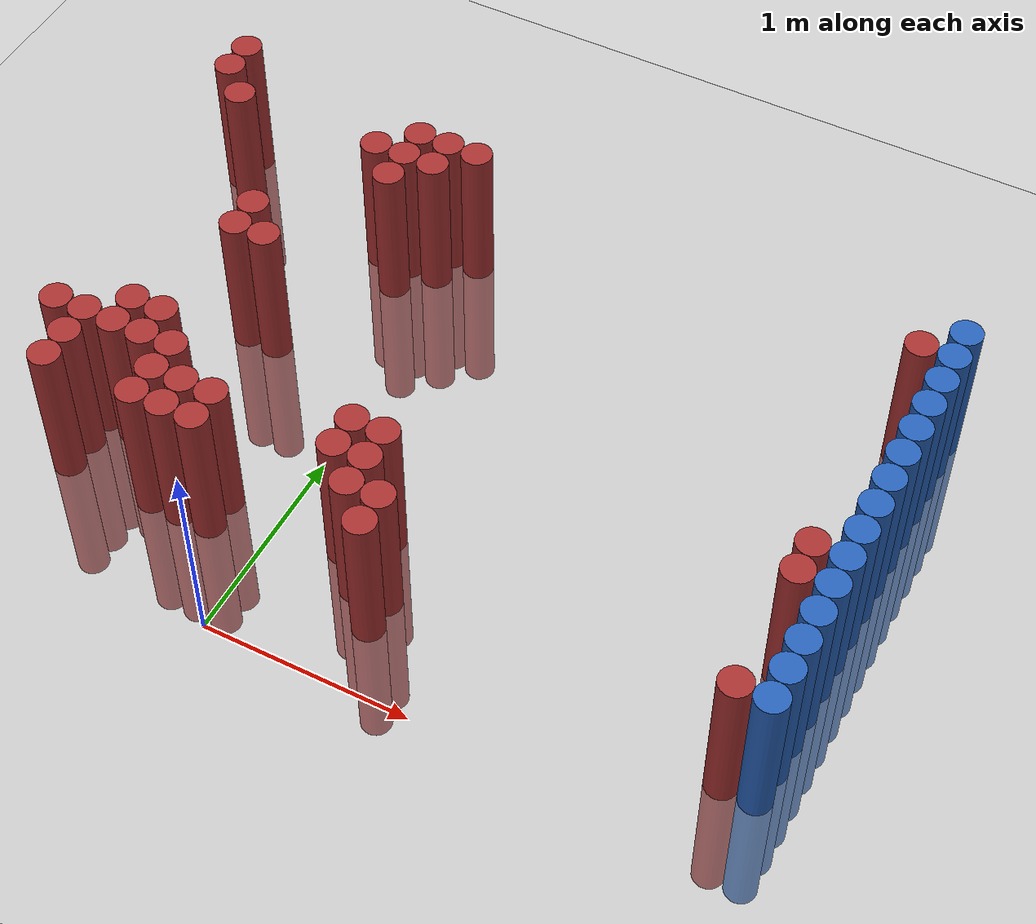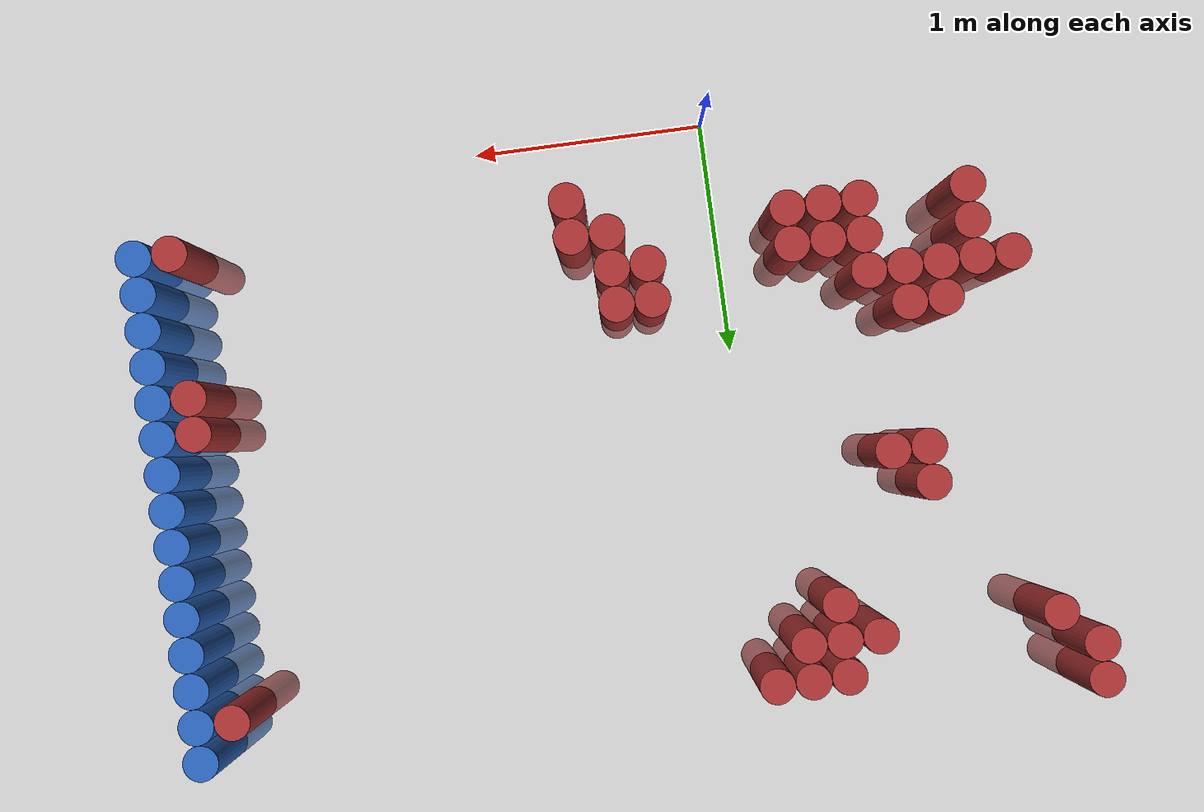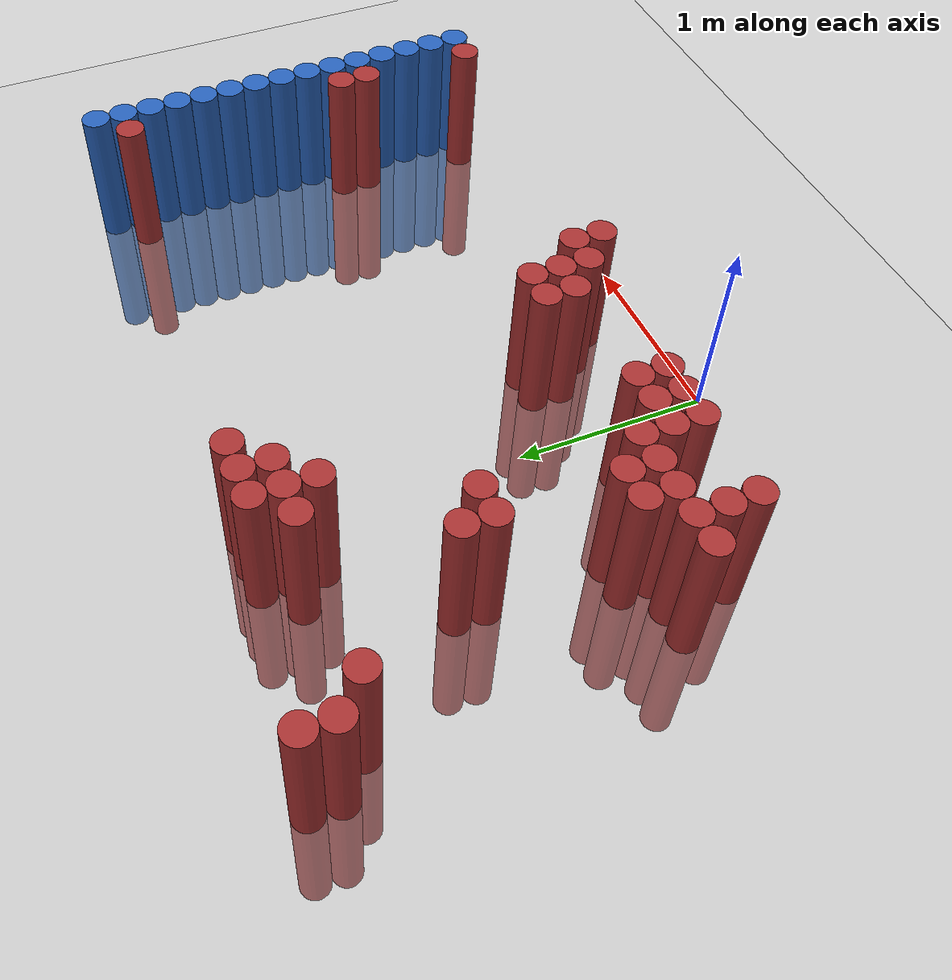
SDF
<sdf version="1.6">
 <world name="default">
  <model name="ground_plane">
   <static>1</static>
   <link name="link">
    <collision name="collision">
     <geometry><plane><normal>0 0 1</normal><size>100 100</size></plane></geometry>
     <surface><friction><ode><mu>100</mu><mu2>50</mu2></ode></friction></surface>
    </collision>
    <visual name="visual">
     <cast_shadows>0</cast_shadows>
     <geometry><plane><normal>0 0 1</normal><size>100 100</size></plane></geometry>
     <material>
      <script><uri>file://media/materials/scripts/gazebo.material</uri><name>Gazebo/Grey</name></script>
     </material>
    </visual>
   </link>
  </model>
  <model name="unit_cylinder_156">
   <static>1</static>
   <pose>-1.325000 2.425000 0.000000 0.000000 0.000000 0.000000</pose>
   <link name="link">
    <inertial>
     <mass>1</mass>
     <inertia><ixx>0.145833</ixx><ixy>0</ixy><ixz>0</ixz><iyy>0.145833</iyy><iyz>0</iyz><izz>0.125</izz></inertia>
    </inertial>
    <collision name="collision">
     <geometry><cylinder><radius>0.075000</radius><length>1.5</length></cylinder></geometry>
    </collision>
    <visual name="visual">
     <geometry><cylinder><radius>0.075000</radius><length>1.5</length></cylinder></geometry>
     <material>
      <ambient>0.648000 0.192000 0.192000 1</ambient>
      <diffuse>0.648000 0.192000 0.192000 1</diffuse>
     </material>
     <material>
      <script><name>Gazebo/Grey</name><uri>file://media/materials/scripts/gazebo.material</uri></script>
     </material>
    </visual>
   </link>
  </model>
  <model name="unit_cylinder_157">
   <static>1</static>
   <pose>-1.325000 2.575000 0.000000 0.000000 0.000000 0.000000</pose>
   <link name="link">
    <inertial>
     <mass>1</mass>
     <inertia><ixx>0.145833</ixx><ixy>0</ixy><ixz>0</ixz><iyy>0.145833</iyy><iyz>0</iyz><izz>0.125</izz></inertia>
    </inertial>
    <collision name="collision">
     <geometry><cylinder><radius>0.075000</radius><length>1.5</length></cylinder></geometry>
    </collision>
    <visual name="visual">
     <geometry><cylinder><radius>0.075000</radius><length>1.5</length></cylinder></geometry>
     <material>
      <ambient>0.648000 0.192000 0.192000 1</ambient>
      <diffuse>0.648000 0.192000 0.192000 1</diffuse>
     </material>
     <material>
      <script><name>Gazebo/Grey</name><uri>file://media/materials/scripts/gazebo.material</uri></script>
     </material>
    </visual>
   </link>
  </model>
  <model name="unit_cylinder_166">
   <static>1</static>
   <pose>-1.175000 0.775000 0.000000 0.000000 0.000000 0.000000</pose>
   <link name="link">
    <inertial>
     <mass>1</mass>
     <inertia><ixx>0.145833</ixx><ixy>0</ixy><ixz>0</ixz><iyy>0.145833</iyy><iyz>0</iyz><izz>0.125</izz></inertia>
    </inertial>
    <collision name="collision">
     <geometry><cylinder><radius>0.075000</radius><length>1.5</length></cylinder></geometry>
    </collision>
    <visual name="visual">
     <geometry><cylinder><radius>0.075000</radius><length>1.5</length></cylinder></geometry>
     <material>
      <ambient>0.648000 0.192000 0.192000 1</ambient>
      <diffuse>0.648000 0.192000 0.192000 1</diffuse>
     </material>
     <material>
      <script><name>Gazebo/Grey</name><uri>file://media/materials/scripts/gazebo.material</uri></script>
     </material>
    </visual>
   </link>
  </model>
  <model name="unit_cylinder_167">
   <static>1</static>
   <pose>-1.175000 2.275000 0.000000 0.000000 0.000000 0.000000</pose>
   <link name="link">
    <inertial>
     <mass>1</mass>
     <inertia><ixx>0.145833</ixx><ixy>0</ixy><ixz>0</ixz><iyy>0.145833</iyy><iyz>0</iyz><izz>0.125</izz></inertia>
    </inertial>
    <collision name="collision">
     <geometry><cylinder><radius>0.075000</radius><length>1.5</length></cylinder></geometry>
    </collision>
    <visual name="visual">
     <geometry><cylinder><radius>0.075000</radius><length>1.5</length></cylinder></geometry>
     <material>
      <ambient>0.648000 0.192000 0.192000 1</ambient>
      <diffuse>0.648000 0.192000 0.192000 1</diffuse>
     </material>
     <material>
      <script><name>Gazebo/Grey</name><uri>file://media/materials/scripts/gazebo.material</uri></script>
     </material>
    </visual>
   </link>
  </model>
  <model name="unit_cylinder_173">
   <static>1</static>
   <pose>-1.025000 0.475000 0.000000 0.000000 0.000000 0.000000</pose>
   <link name="link">
    <inertial>
     <mass>1</mass>
     <inertia><ixx>0.145833</ixx><ixy>0</ixy><ixz>0</ixz><iyy>0.145833</iyy><iyz>0</iyz><izz>0.125</izz></inertia>
    </inertial>
    <collision name="collision">
     <geometry><cylinder><radius>0.075000</radius><length>1.5</length></cylinder></geometry>
    </collision>
    <visual name="visual">
     <geometry><cylinder><radius>0.075000</radius><length>1.5</length></cylinder></geometry>
     <material>
      <ambient>0.648000 0.192000 0.192000 1</ambient>
      <diffuse>0.648000 0.192000 0.192000 1</diffuse>
     </material>
     <material>
      <script><name>Gazebo/Grey</name><uri>file://media/materials/scripts/gazebo.material</uri></script>
     </material>
    </visual>
   </link>
  </model>
  <model name="unit_cylinder_174">
   <static>1</static>
   <pose>-1.025000 0.625000 0.000000 0.000000 0.000000 0.000000</pose>
   <link name="link">
    <inertial>
     <mass>1</mass>
     <inertia><ixx>0.145833</ixx><ixy>0</ixy><ixz>0</ixz><iyy>0.145833</iyy><iyz>0</iyz><izz>0.125</izz></inertia>
    </inertial>
    <collision name="collision">
     <geometry><cylinder><radius>0.075000</radius><length>1.5</length></cylinder></geometry>
    </collision>
    <visual name="visual">
     <geometry><cylinder><radius>0.075000</radius><length>1.5</length></cylinder></geometry>
     <material>
      <ambient>0.648000 0.192000 0.192000 1</ambient>
      <diffuse>0.648000 0.192000 0.192000 1</diffuse>
     </material>
     <material>
      <script><name>Gazebo/Grey</name><uri>file://media/materials/scripts/gazebo.material</uri></script>
     </material>
    </visual>
   </link>
  </model>
  <model name="unit_cylinder_175">
   <static>1</static>
   <pose>-1.025000 0.775000 0.000000 0.000000 0.000000 0.000000</pose>
   <link name="link">
    <inertial>
     <mass>1</mass>
     <inertia><ixx>0.145833</ixx><ixy>0</ixy><ixz>0</ixz><iyy>0.145833</iyy><iyz>0</iyz><izz>0.125</izz></inertia>
    </inertial>
    <collision name="collision">
     <geometry><cylinder><radius>0.075000</radius><length>1.5</length></cylinder></geometry>
    </collision>
    <visual name="visual">
     <geometry><cylinder><radius>0.075000</radius><length>1.5</length></cylinder></geometry>
     <material>
      <ambient>0.648000 0.192000 0.192000 1</ambient>
      <diffuse>0.648000 0.192000 0.192000 1</diffuse>
     </material>
     <material>
      <script><name>Gazebo/Grey</name><uri>file://media/materials/scripts/gazebo.material</uri></script>
     </material>
    </visual>
   </link>
  </model>
  <model name="unit_cylinder_177">
   <static>1</static>
   <pose>-0.875000 0.775000 0.000000 0.000000 0.000000 0.000000</pose>
   <link name="link">
    <inertial>
     <mass>1</mass>
     <inertia><ixx>0.145833</ixx><ixy>0</ixy><ixz>0</ixz><iyy>0.145833</iyy><iyz>0</iyz><izz>0.125</izz></inertia>
    </inertial>
    <collision name="collision">
     <geometry><cylinder><radius>0.075000</radius><length>1.5</length></cylinder></geometry>
    </collision>
    <visual name="visual">
     <geometry><cylinder><radius>0.075000</radius><length>1.5</length></cylinder></geometry>
     <material>
      <ambient>0.648000 0.192000 0.192000 1</ambient>
      <diffuse>0.648000 0.192000 0.192000 1</diffuse>
     </material>
     <material>
      <script><name>Gazebo/Grey</name><uri>file://media/materials/scripts/gazebo.material</uri></script>
     </material>
    </visual>
   </link>
  </model>
  <model name="unit_cylinder_178">
   <static>1</static>
   <pose>-0.875000 0.925000 0.000000 0.000000 0.000000 0.000000</pose>
   <link name="link">
    <inertial>
     <mass>1</mass>
     <inertia><ixx>0.145833</ixx><ixy>0</ixy><ixz>0</ixz><iyy>0.145833</iyy><iyz>0</iyz><izz>0.125</izz></inertia>
    </inertial>
    <collision name="collision">
     <geometry><cylinder><radius>0.075000</radius><length>1.5</length></cylinder></geometry>
    </collision>
    <visual name="visual">
     <geometry><cylinder><radius>0.075000</radius><length>1.5</length></cylinder></geometry>
     <material>
      <ambient>0.648000 0.192000 0.192000 1</ambient>
      <diffuse>0.648000 0.192000 0.192000 1</diffuse>
     </material>
     <material>
      <script><name>Gazebo/Grey</name><uri>file://media/materials/scripts/gazebo.material</uri></script>
     </material>
    </visual>
   </link>
  </model>
  <model name="unit_cylinder_181">
   <static>1</static>
   <pose>-0.725000 0.775000 0.000000 0.000000 0.000000 0.000000</pose>
   <link name="link">
    <inertial>
     <mass>1</mass>
     <inertia><ixx>0.145833</ixx><ixy>0</ixy><ixz>0</ixz><iyy>0.145833</iyy><iyz>0</iyz><izz>0.125</izz></inertia>
    </inertial>
    <collision name="collision">
     <geometry><cylinder><radius>0.075000</radius><length>1.5</length></cylinder></geometry>
    </collision>
    <visual name="visual">
     <geometry><cylinder><radius>0.075000</radius><length>1.5</length></cylinder></geometry>
     <material>
      <ambient>0.648000 0.192000 0.192000 1</ambient>
      <diffuse>0.648000 0.192000 0.192000 1</diffuse>
     </material>
     <material>
      <script><name>Gazebo/Grey</name><uri>file://media/materials/scripts/gazebo.material</uri></script>
     </material>
    </visual>
   </link>
  </model>
  <model name="unit_cylinder_182">
   <static>1</static>
   <pose>-0.725000 0.925000 0.000000 0.000000 0.000000 0.000000</pose>
   <link name="link">
    <inertial>
     <mass>1</mass>
     <inertia><ixx>0.145833</ixx><ixy>0</ixy><ixz>0</ixz><iyy>0.145833</iyy><iyz>0</iyz><izz>0.125</izz></inertia>
    </inertial>
    <collision name="collision">
     <geometry><cylinder><radius>0.075000</radius><length>1.5</length></cylinder></geometry>
    </collision>
    <visual name="visual">
     <geometry><cylinder><radius>0.075000</radius><length>1.5</length></cylinder></geometry>
     <material>
      <ambient>0.648000 0.192000 0.192000 1</ambient>
      <diffuse>0.648000 0.192000 0.192000 1</diffuse>
     </material>
     <material>
      <script><name>Gazebo/Grey</name><uri>file://media/materials/scripts/gazebo.material</uri></script>
     </material>
    </visual>
   </link>
  </model>
  <model name="unit_cylinder_183">
   <static>1</static>
   <pose>-0.725000 1.525000 0.000000 0.000000 0.000000 0.000000</pose>
   <link name="link">
    <inertial>
     <mass>1</mass>
     <inertia><ixx>0.145833</ixx><ixy>0</ixy><ixz>0</ixz><iyy>0.145833</iyy><iyz>0</iyz><izz>0.125</izz></inertia>
    </inertial>
    <collision name="collision">
     <geometry><cylinder><radius>0.075000</radius><length>1.5</length></cylinder></geometry>
    </collision>
    <visual name="visual">
     <geometry><cylinder><radius>0.075000</radius><length>1.5</length></cylinder></geometry>
     <material>
      <ambient>0.648000 0.192000 0.192000 1</ambient>
      <diffuse>0.648000 0.192000 0.192000 1</diffuse>
     </material>
     <material>
      <script><name>Gazebo/Grey</name><uri>file://media/materials/scripts/gazebo.material</uri></script>
     </material>
    </visual>
   </link>
  </model>
  <model name="unit_cylinder_184">
   <static>1</static>
   <pose>-0.725000 1.675000 0.000000 0.000000 0.000000 0.000000</pose>
   <link name="link">
    <inertial>
     <mass>1</mass>
     <inertia><ixx>0.145833</ixx><ixy>0</ixy><ixz>0</ixz><iyy>0.145833</iyy><iyz>0</iyz><izz>0.125</izz></inertia>
    </inertial>
    <collision name="collision">
     <geometry><cylinder><radius>0.075000</radius><length>1.5</length></cylinder></geometry>
    </collision>
    <visual name="visual">
     <geometry><cylinder><radius>0.075000</radius><length>1.5</length></cylinder></geometry>
     <material>
      <ambient>0.648000 0.192000 0.192000 1</ambient>
      <diffuse>0.648000 0.192000 0.192000 1</diffuse>
     </material>
     <material>
      <script><name>Gazebo/Grey</name><uri>file://media/materials/scripts/gazebo.material</uri></script>
     </material>
    </visual>
   </link>
  </model>
  <model name="unit_cylinder_186">
   <static>1</static>
   <pose>-0.575000 0.475000 0.000000 0.000000 0.000000 0.000000</pose>
   <link name="link">
    <inertial>
     <mass>1</mass>
     <inertia><ixx>0.145833</ixx><ixy>0</ixy><ixz>0</ixz><iyy>0.145833</iyy><iyz>0</iyz><izz>0.125</izz></inertia>
    </inertial>
    <collision name="collision">
     <geometry><cylinder><radius>0.075000</radius><length>1.5</length></cylinder></geometry>
    </collision>
    <visual name="visual">
     <geometry><cylinder><radius>0.075000</radius><length>1.5</length></cylinder></geometry>
     <material>
      <ambient>0.648000 0.192000 0.192000 1</ambient>
      <diffuse>0.648000 0.192000 0.192000 1</diffuse>
     </material>
     <material>
      <script><name>Gazebo/Grey</name><uri>file://media/materials/scripts/gazebo.material</uri></script>
     </material>
    </visual>
   </link>
  </model>
  <model name="unit_cylinder_187">
   <static>1</static>
   <pose>-0.575000 0.625000 0.000000 0.000000 0.000000 0.000000</pose>
   <link name="link">
    <inertial>
     <mass>1</mass>
     <inertia><ixx>0.145833</ixx><ixy>0</ixy><ixz>0</ixz><iyy>0.145833</iyy><iyz>0</iyz><izz>0.125</izz></inertia>
    </inertial>
    <collision name="collision">
     <geometry><cylinder><radius>0.075000</radius><length>1.5</length></cylinder></geometry>
    </collision>
    <visual name="visual">
     <geometry><cylinder><radius>0.075000</radius><length>1.5</length></cylinder></geometry>
     <material>
      <ambient>0.648000 0.192000 0.192000 1</ambient>
      <diffuse>0.648000 0.192000 0.192000 1</diffuse>
     </material>
     <material>
      <script><name>Gazebo/Grey</name><uri>file://media/materials/scripts/gazebo.material</uri></script>
     </material>
    </visual>
   </link>
  </model>
  <model name="unit_cylinder_188">
   <static>1</static>
   <pose>-0.575000 0.775000 0.000000 0.000000 0.000000 0.000000</pose>
   <link name="link">
    <inertial>
     <mass>1</mass>
     <inertia><ixx>0.145833</ixx><ixy>0</ixy><ixz>0</ixz><iyy>0.145833</iyy><iyz>0</iyz><izz>0.125</izz></inertia>
    </inertial>
    <collision name="collision">
     <geometry><cylinder><radius>0.075000</radius><length>1.5</length></cylinder></geometry>
    </collision>
    <visual name="visual">
     <geometry><cylinder><radius>0.075000</radius><length>1.5</length></cylinder></geometry>
     <material>
      <ambient>0.648000 0.192000 0.192000 1</ambient>
      <diffuse>0.648000 0.192000 0.192000 1</diffuse>
     </material>
     <material>
      <script><name>Gazebo/Grey</name><uri>file://media/materials/scripts/gazebo.material</uri></script>
     </material>
    </visual>
   </link>
  </model>
  <model name="unit_cylinder_189">
   <static>1</static>
   <pose>-0.575000 1.525000 0.000000 0.000000 0.000000 0.000000</pose>
   <link name="link">
    <inertial>
     <mass>1</mass>
     <inertia><ixx>0.145833</ixx><ixy>0</ixy><ixz>0</ixz><iyy>0.145833</iyy><iyz>0</iyz><izz>0.125</izz></inertia>
    </inertial>
    <collision name="collision">
     <geometry><cylinder><radius>0.075000</radius><length>1.5</length></cylinder></geometry>
    </collision>
    <visual name="visual">
     <geometry><cylinder><radius>0.075000</radius><length>1.5</length></cylinder></geometry>
     <material>
      <ambient>0.648000 0.192000 0.192000 1</ambient>
      <diffuse>0.648000 0.192000 0.192000 1</diffuse>
     </material>
     <material>
      <script><name>Gazebo/Grey</name><uri>file://media/materials/scripts/gazebo.material</uri></script>
     </material>
    </visual>
   </link>
  </model>
  <model name="unit_cylinder_190">
   <static>1</static>
   <pose>-0.425000 0.475000 0.000000 0.000000 0.000000 0.000000</pose>
   <link name="link">
    <inertial>
     <mass>1</mass>
     <inertia><ixx>0.145833</ixx><ixy>0</ixy><ixz>0</ixz><iyy>0.145833</iyy><iyz>0</iyz><izz>0.125</izz></inertia>
    </inertial>
    <collision name="collision">
     <geometry><cylinder><radius>0.075000</radius><length>1.5</length></cylinder></geometry>
    </collision>
    <visual name="visual">
     <geometry><cylinder><radius>0.075000</radius><length>1.5</length></cylinder></geometry>
     <material>
      <ambient>0.648000 0.192000 0.192000 1</ambient>
      <diffuse>0.648000 0.192000 0.192000 1</diffuse>
     </material>
     <material>
      <script><name>Gazebo/Grey</name><uri>file://media/materials/scripts/gazebo.material</uri></script>
     </material>
    </visual>
   </link>
  </model>
  <model name="unit_cylinder_191">
   <static>1</static>
   <pose>-0.425000 0.625000 0.000000 0.000000 0.000000 0.000000</pose>
   <link name="link">
    <inertial>
     <mass>1</mass>
     <inertia><ixx>0.145833</ixx><ixy>0</ixy><ixz>0</ixz><iyy>0.145833</iyy><iyz>0</iyz><izz>0.125</izz></inertia>
    </inertial>
    <collision name="collision">
     <geometry><cylinder><radius>0.075000</radius><length>1.5</length></cylinder></geometry>
    </collision>
    <visual name="visual">
     <geometry><cylinder><radius>0.075000</radius><length>1.5</length></cylinder></geometry>
     <material>
      <ambient>0.648000 0.192000 0.192000 1</ambient>
      <diffuse>0.648000 0.192000 0.192000 1</diffuse>
     </material>
     <material>
      <script><name>Gazebo/Grey</name><uri>file://media/materials/scripts/gazebo.material</uri></script>
     </material>
    </visual>
   </link>
  </model>
  <model name="unit_cylinder_192">
   <static>1</static>
   <pose>-0.425000 2.275000 0.000000 0.000000 0.000000 0.000000</pose>
   <link name="link">
    <inertial>
     <mass>1</mass>
     <inertia><ixx>0.145833</ixx><ixy>0</ixy><ixz>0</ixz><iyy>0.145833</iyy><iyz>0</iyz><izz>0.125</izz></inertia>
    </inertial>
    <collision name="collision">
     <geometry><cylinder><radius>0.075000</radius><length>1.5</length></cylinder></geometry>
    </collision>
    <visual name="visual">
     <geometry><cylinder><radius>0.075000</radius><length>1.5</length></cylinder></geometry>
     <material>
      <ambient>0.648000 0.192000 0.192000 1</ambient>
      <diffuse>0.648000 0.192000 0.192000 1</diffuse>
     </material>
     <material>
      <script><name>Gazebo/Grey</name><uri>file://media/materials/scripts/gazebo.material</uri></script>
     </material>
    </visual>
   </link>
  </model>
  <model name="unit_cylinder_193">
   <static>1</static>
   <pose>-0.275000 0.475000 0.000000 0.000000 0.000000 0.000000</pose>
   <link name="link">
    <inertial>
     <mass>1</mass>
     <inertia><ixx>0.145833</ixx><ixy>0</ixy><ixz>0</ixz><iyy>0.145833</iyy><iyz>0</iyz><izz>0.125</izz></inertia>
    </inertial>
    <collision name="collision">
     <geometry><cylinder><radius>0.075000</radius><length>1.5</length></cylinder></geometry>
    </collision>
    <visual name="visual">
     <geometry><cylinder><radius>0.075000</radius><length>1.5</length></cylinder></geometry>
     <material>
      <ambient>0.648000 0.192000 0.192000 1</ambient>
      <diffuse>0.648000 0.192000 0.192000 1</diffuse>
     </material>
     <material>
      <script><name>Gazebo/Grey</name><uri>file://media/materials/scripts/gazebo.material</uri></script>
     </material>
    </visual>
   </link>
  </model>
  <model name="unit_cylinder_194">
   <static>1</static>
   <pose>-0.275000 0.625000 0.000000 0.000000 0.000000 0.000000</pose>
   <link name="link">
    <inertial>
     <mass>1</mass>
     <inertia><ixx>0.145833</ixx><ixy>0</ixy><ixz>0</ixz><iyy>0.145833</iyy><iyz>0</iyz><izz>0.125</izz></inertia>
    </inertial>
    <collision name="collision">
     <geometry><cylinder><radius>0.075000</radius><length>1.5</length></cylinder></geometry>
    </collision>
    <visual name="visual">
     <geometry><cylinder><radius>0.075000</radius><length>1.5</length></cylinder></geometry>
     <material>
      <ambient>0.648000 0.192000 0.192000 1</ambient>
      <diffuse>0.648000 0.192000 0.192000 1</diffuse>
     </material>
     <material>
      <script><name>Gazebo/Grey</name><uri>file://media/materials/scripts/gazebo.material</uri></script>
     </material>
    </visual>
   </link>
  </model>
  <model name="unit_cylinder_195">
   <static>1</static>
   <pose>-0.275000 2.125000 0.000000 0.000000 0.000000 0.000000</pose>
   <link name="link">
    <inertial>
     <mass>1</mass>
     <inertia><ixx>0.145833</ixx><ixy>0</ixy><ixz>0</ixz><iyy>0.145833</iyy><iyz>0</iyz><izz>0.125</izz></inertia>
    </inertial>
    <collision name="collision">
     <geometry><cylinder><radius>0.075000</radius><length>1.5</length></cylinder></geometry>
    </collision>
    <visual name="visual">
     <geometry><cylinder><radius>0.075000</radius><length>1.5</length></cylinder></geometry>
     <material>
      <ambient>0.648000 0.192000 0.192000 1</ambient>
      <diffuse>0.648000 0.192000 0.192000 1</diffuse>
     </material>
     <material>
      <script><name>Gazebo/Grey</name><uri>file://media/materials/scripts/gazebo.material</uri></script>
     </material>
    </visual>
   </link>
  </model>
  <model name="unit_cylinder_196">
   <static>1</static>
   <pose>-0.275000 2.275000 0.000000 0.000000 0.000000 0.000000</pose>
   <link name="link">
    <inertial>
     <mass>1</mass>
     <inertia><ixx>0.145833</ixx><ixy>0</ixy><ixz>0</ixz><iyy>0.145833</iyy><iyz>0</iyz><izz>0.125</izz></inertia>
    </inertial>
    <collision name="collision">
     <geometry><cylinder><radius>0.075000</radius><length>1.5</length></cylinder></geometry>
    </collision>
    <visual name="visual">
     <geometry><cylinder><radius>0.075000</radius><length>1.5</length></cylinder></geometry>
     <material>
      <ambient>0.648000 0.192000 0.192000 1</ambient>
      <diffuse>0.648000 0.192000 0.192000 1</diffuse>
     </material>
     <material>
      <script><name>Gazebo/Grey</name><uri>file://media/materials/scripts/gazebo.material</uri></script>
     </material>
    </visual>
   </link>
  </model>
  <model name="unit_cylinder_197">
   <static>1</static>
   <pose>-0.275000 2.425000 0.000000 0.000000 0.000000 0.000000</pose>
   <link name="link">
    <inertial>
     <mass>1</mass>
     <inertia><ixx>0.145833</ixx><ixy>0</ixy><ixz>0</ixz><iyy>0.145833</iyy><iyz>0</iyz><izz>0.125</izz></inertia>
    </inertial>
    <collision name="collision">
     <geometry><cylinder><radius>0.075000</radius><length>1.5</length></cylinder></geometry>
    </collision>
    <visual name="visual">
     <geometry><cylinder><radius>0.075000</radius><length>1.5</length></cylinder></geometry>
     <material>
      <ambient>0.648000 0.192000 0.192000 1</ambient>
      <diffuse>0.648000 0.192000 0.192000 1</diffuse>
     </material>
     <material>
      <script><name>Gazebo/Grey</name><uri>file://media/materials/scripts/gazebo.material</uri></script>
     </material>
    </visual>
   </link>
  </model>
  <model name="unit_cylinder_198">
   <static>1</static>
   <pose>-0.125000 2.275000 0.000000 0.000000 0.000000 0.000000</pose>
   <link name="link">
    <inertial>
     <mass>1</mass>
     <inertia><ixx>0.145833</ixx><ixy>0</ixy><ixz>0</ixz><iyy>0.145833</iyy><iyz>0</iyz><izz>0.125</izz></inertia>
    </inertial>
    <collision name="collision">
     <geometry><cylinder><radius>0.075000</radius><length>1.5</length></cylinder></geometry>
    </collision>
    <visual name="visual">
     <geometry><cylinder><radius>0.075000</radius><length>1.5</length></cylinder></geometry>
     <material>
      <ambient>0.648000 0.192000 0.192000 1</ambient>
      <diffuse>0.648000 0.192000 0.192000 1</diffuse>
     </material>
     <material>
      <script><name>Gazebo/Grey</name><uri>file://media/materials/scripts/gazebo.material</uri></script>
     </material>
    </visual>
   </link>
  </model>
  <model name="unit_cylinder_199">
   <static>1</static>
   <pose>-0.125000 2.425000 0.000000 0.000000 0.000000 0.000000</pose>
   <link name="link">
    <inertial>
     <mass>1</mass>
     <inertia><ixx>0.145833</ixx><ixy>0</ixy><ixz>0</ixz><iyy>0.145833</iyy><iyz>0</iyz><izz>0.125</izz></inertia>
    </inertial>
    <collision name="collision">
     <geometry><cylinder><radius>0.075000</radius><length>1.5</length></cylinder></geometry>
    </collision>
    <visual name="visual">
     <geometry><cylinder><radius>0.075000</radius><length>1.5</length></cylinder></geometry>
     <material>
      <ambient>0.648000 0.192000 0.192000 1</ambient>
      <diffuse>0.648000 0.192000 0.192000 1</diffuse>
     </material>
     <material>
      <script><name>Gazebo/Grey</name><uri>file://media/materials/scripts/gazebo.material</uri></script>
     </material>
    </visual>
   </link>
  </model>
  <model name="unit_cylinder_201">
   <static>1</static>
   <pose>0.025000 2.425000 0.000000 0.000000 0.000000 0.000000</pose>
   <link name="link">
    <inertial>
     <mass>1</mass>
     <inertia><ixx>0.145833</ixx><ixy>0</ixy><ixz>0</ixz><iyy>0.145833</iyy><iyz>0</iyz><izz>0.125</izz></inertia>
    </inertial>
    <collision name="collision">
     <geometry><cylinder><radius>0.075000</radius><length>1.5</length></cylinder></geometry>
    </collision>
    <visual name="visual">
     <geometry><cylinder><radius>0.075000</radius><length>1.5</length></cylinder></geometry>
     <material>
      <ambient>0.648000 0.192000 0.192000 1</ambient>
      <diffuse>0.648000 0.192000 0.192000 1</diffuse>
     </material>
     <material>
      <script><name>Gazebo/Grey</name><uri>file://media/materials/scripts/gazebo.material</uri></script>
     </material>
    </visual>
   </link>
  </model>
  <model name="unit_cylinder_203">
   <static>1</static>
   <pose>0.325000 0.625000 0.000000 0.000000 0.000000 0.000000</pose>
   <link name="link">
    <inertial>
     <mass>1</mass>
     <inertia><ixx>0.145833</ixx><ixy>0</ixy><ixz>0</ixz><iyy>0.145833</iyy><iyz>0</iyz><izz>0.125</izz></inertia>
    </inertial>
    <collision name="collision">
     <geometry><cylinder><radius>0.075000</radius><length>1.5</length></cylinder></geometry>
    </collision>
    <visual name="visual">
     <geometry><cylinder><radius>0.075000</radius><length>1.5</length></cylinder></geometry>
     <material>
      <ambient>0.648000 0.192000 0.192000 1</ambient>
      <diffuse>0.648000 0.192000 0.192000 1</diffuse>
     </material>
     <material>
      <script><name>Gazebo/Grey</name><uri>file://media/materials/scripts/gazebo.material</uri></script>
     </material>
    </visual>
   </link>
  </model>
  <model name="unit_cylinder_204">
   <static>1</static>
   <pose>0.325000 0.775000 0.000000 0.000000 0.000000 0.000000</pose>
   <link name="link">
    <inertial>
     <mass>1</mass>
     <inertia><ixx>0.145833</ixx><ixy>0</ixy><ixz>0</ixz><iyy>0.145833</iyy><iyz>0</iyz><izz>0.125</izz></inertia>
    </inertial>
    <collision name="collision">
     <geometry><cylinder><radius>0.075000</radius><length>1.5</length></cylinder></geometry>
    </collision>
    <visual name="visual">
     <geometry><cylinder><radius>0.075000</radius><length>1.5</length></cylinder></geometry>
     <material>
      <ambient>0.648000 0.192000 0.192000 1</ambient>
      <diffuse>0.648000 0.192000 0.192000 1</diffuse>
     </material>
     <material>
      <script><name>Gazebo/Grey</name><uri>file://media/materials/scripts/gazebo.material</uri></script>
     </material>
    </visual>
   </link>
  </model>
  <model name="unit_cylinder_209">
   <static>1</static>
   <pose>0.475000 0.475000 0.000000 0.000000 0.000000 0.000000</pose>
   <link name="link">
    <inertial>
     <mass>1</mass>
     <inertia><ixx>0.145833</ixx><ixy>0</ixy><ixz>0</ixz><iyy>0.145833</iyy><iyz>0</iyz><izz>0.125</izz></inertia>
    </inertial>
    <collision name="collision">
     <geometry><cylinder><radius>0.075000</radius><length>1.5</length></cylinder></geometry>
    </collision>
    <visual name="visual">
     <geometry><cylinder><radius>0.075000</radius><length>1.5</length></cylinder></geometry>
     <material>
      <ambient>0.648000 0.192000 0.192000 1</ambient>
      <diffuse>0.648000 0.192000 0.192000 1</diffuse>
     </material>
     <material>
      <script><name>Gazebo/Grey</name><uri>file://media/materials/scripts/gazebo.material</uri></script>
     </material>
    </visual>
   </link>
  </model>
  <model name="unit_cylinder_210">
   <static>1</static>
   <pose>0.475000 0.625000 0.000000 0.000000 0.000000 0.000000</pose>
   <link name="link">
    <inertial>
     <mass>1</mass>
     <inertia><ixx>0.145833</ixx><ixy>0</ixy><ixz>0</ixz><iyy>0.145833</iyy><iyz>0</iyz><izz>0.125</izz></inertia>
    </inertial>
    <collision name="collision">
     <geometry><cylinder><radius>0.075000</radius><length>1.5</length></cylinder></geometry>
    </collision>
    <visual name="visual">
     <geometry><cylinder><radius>0.075000</radius><length>1.5</length></cylinder></geometry>
     <material>
      <ambient>0.648000 0.192000 0.192000 1</ambient>
      <diffuse>0.648000 0.192000 0.192000 1</diffuse>
     </material>
     <material>
      <script><name>Gazebo/Grey</name><uri>file://media/materials/scripts/gazebo.material</uri></script>
     </material>
    </visual>
   </link>
  </model>
  <model name="unit_cylinder_211">
   <static>1</static>
   <pose>0.475000 0.775000 0.000000 0.000000 0.000000 0.000000</pose>
   <link name="link">
    <inertial>
     <mass>1</mass>
     <inertia><ixx>0.145833</ixx><ixy>0</ixy><ixz>0</ixz><iyy>0.145833</iyy><iyz>0</iyz><izz>0.125</izz></inertia>
    </inertial>
    <collision name="collision">
     <geometry><cylinder><radius>0.075000</radius><length>1.5</length></cylinder></geometry>
    </collision>
    <visual name="visual">
     <geometry><cylinder><radius>0.075000</radius><length>1.5</length></cylinder></geometry>
     <material>
      <ambient>0.648000 0.192000 0.192000 1</ambient>
      <diffuse>0.648000 0.192000 0.192000 1</diffuse>
     </material>
     <material>
      <script><name>Gazebo/Grey</name><uri>file://media/materials/scripts/gazebo.material</uri></script>
     </material>
    </visual>
   </link>
  </model>
  <model name="unit_cylinder_216">
   <static>1</static>
   <pose>0.625000 0.325000 0.000000 0.000000 0.000000 0.000000</pose>
   <link name="link">
    <inertial>
     <mass>1</mass>
     <inertia><ixx>0.145833</ixx><ixy>0</ixy><ixz>0</ixz><iyy>0.145833</iyy><iyz>0</iyz><izz>0.125</izz></inertia>
    </inertial>
    <collision name="collision">
     <geometry><cylinder><radius>0.075000</radius><length>1.5</length></cylinder></geometry>
    </collision>
    <visual name="visual">
     <geometry><cylinder><radius>0.075000</radius><length>1.5</length></cylinder></geometry>
     <material>
      <ambient>0.648000 0.192000 0.192000 1</ambient>
      <diffuse>0.648000 0.192000 0.192000 1</diffuse>
     </material>
     <material>
      <script><name>Gazebo/Grey</name><uri>file://media/materials/scripts/gazebo.material</uri></script>
     </material>
    </visual>
   </link>
  </model>
  <model name="unit_cylinder_217">
   <static>1</static>
   <pose>0.625000 0.475000 0.000000 0.000000 0.000000 0.000000</pose>
   <link name="link">
    <inertial>
     <mass>1</mass>
     <inertia><ixx>0.145833</ixx><ixy>0</ixy><ixz>0</ixz><iyy>0.145833</iyy><iyz>0</iyz><izz>0.125</izz></inertia>
    </inertial>
    <collision name="collision">
     <geometry><cylinder><radius>0.075000</radius><length>1.5</length></cylinder></geometry>
    </collision>
    <visual name="visual">
     <geometry><cylinder><radius>0.075000</radius><length>1.5</length></cylinder></geometry>
     <material>
      <ambient>0.648000 0.192000 0.192000 1</ambient>
      <diffuse>0.648000 0.192000 0.192000 1</diffuse>
     </material>
     <material>
      <script><name>Gazebo/Grey</name><uri>file://media/materials/scripts/gazebo.material</uri></script>
     </material>
    </visual>
   </link>
  </model>
  <model name="unit_cylinder_233">
   <static>1</static>
   <pose>2.275000 0.325000 0.000000 0.000000 0.000000 0.000000</pose>
   <link name="link">
    <inertial>
     <mass>1</mass>
     <inertia><ixx>0.145833</ixx><ixy>0</ixy><ixz>0</ixz><iyy>0.145833</iyy><iyz>0</iyz><izz>0.125</izz></inertia>
    </inertial>
    <collision name="collision">
     <geometry><cylinder><radius>0.075000</radius><length>1.5</length></cylinder></geometry>
    </collision>
    <visual name="visual">
     <geometry><cylinder><radius>0.075000</radius><length>1.5</length></cylinder></geometry>
     <material>
      <ambient>0.648000 0.192000 0.192000 1</ambient>
      <diffuse>0.648000 0.192000 0.192000 1</diffuse>
     </material>
     <material>
      <script><name>Gazebo/Grey</name><uri>file://media/materials/scripts/gazebo.material</uri></script>
     </material>
    </visual>
   </link>
  </model>
  <model name="unit_cylinder_234">
   <static>1</static>
   <pose>2.275000 0.925000 0.000000 0.000000 0.000000 0.000000</pose>
   <link name="link">
    <inertial>
     <mass>1</mass>
     <inertia><ixx>0.145833</ixx><ixy>0</ixy><ixz>0</ixz><iyy>0.145833</iyy><iyz>0</iyz><izz>0.125</izz></inertia>
    </inertial>
    <collision name="collision">
     <geometry><cylinder><radius>0.075000</radius><length>1.5</length></cylinder></geometry>
    </collision>
    <visual name="visual">
     <geometry><cylinder><radius>0.075000</radius><length>1.5</length></cylinder></geometry>
     <material>
      <ambient>0.648000 0.192000 0.192000 1</ambient>
      <diffuse>0.648000 0.192000 0.192000 1</diffuse>
     </material>
     <material>
      <script><name>Gazebo/Grey</name><uri>file://media/materials/scripts/gazebo.material</uri></script>
     </material>
    </visual>
   </link>
  </model>
  <model name="unit_cylinder_235">
   <static>1</static>
   <pose>2.275000 1.075000 0.000000 0.000000 0.000000 0.000000</pose>
   <link name="link">
    <inertial>
     <mass>1</mass>
     <inertia><ixx>0.145833</ixx><ixy>0</ixy><ixz>0</ixz><iyy>0.145833</iyy><iyz>0</iyz><izz>0.125</izz></inertia>
    </inertial>
    <collision name="collision">
     <geometry><cylinder><radius>0.075000</radius><length>1.5</length></cylinder></geometry>
    </collision>
    <visual name="visual">
     <geometry><cylinder><radius>0.075000</radius><length>1.5</length></cylinder></geometry>
     <material>
      <ambient>0.648000 0.192000 0.192000 1</ambient>
      <diffuse>0.648000 0.192000 0.192000 1</diffuse>
     </material>
     <material>
      <script><name>Gazebo/Grey</name><uri>file://media/materials/scripts/gazebo.material</uri></script>
     </material>
    </visual>
   </link>
  </model>
  <model name="unit_cylinder_236">
   <static>1</static>
   <pose>2.275000 2.275000 0.000000 0.000000 0.000000 0.000000</pose>
   <link name="link">
    <inertial>
     <mass>1</mass>
     <inertia><ixx>0.145833</ixx><ixy>0</ixy><ixz>0</ixz><iyy>0.145833</iyy><iyz>0</iyz><izz>0.125</izz></inertia>
    </inertial>
    <collision name="collision">
     <geometry><cylinder><radius>0.075000</radius><length>1.5</length></cylinder></geometry>
    </collision>
    <visual name="visual">
     <geometry><cylinder><radius>0.075000</radius><length>1.5</length></cylinder></geometry>
     <material>
      <ambient>0.648000 0.192000 0.192000 1</ambient>
      <diffuse>0.648000 0.192000 0.192000 1</diffuse>
     </material>
     <material>
      <script><name>Gazebo/Grey</name><uri>file://media/materials/scripts/gazebo.material</uri></script>
     </material>
    </visual>
   </link>
  </model>
  <model name="unit_cylinder_243">
   <static>1</static>
   <pose>2.425000 0.325000 0.000000 0.000000 0.000000 0.000000</pose>
   <link name="link">
    <inertial>
     <mass>1</mass>
     <inertia><ixx>0.145833</ixx><ixy>0</ixy><ixz>0</ixz><iyy>0.145833</iyy><iyz>0</iyz><izz>0.125</izz></inertia>
    </inertial>
    <collision name="collision">
     <geometry><cylinder><radius>0.075000</radius><length>1.5</length></cylinder></geometry>
    </collision>
    <visual name="visual">
     <geometry><cylinder><radius>0.075000</radius><length>1.5</length></cylinder></geometry>
     <material>
      <ambient>0.152000 0.379000 0.720000 1</ambient>
      <diffuse>0.152000 0.379000 0.720000 1</diffuse>
     </material>
     <material>
      <script><name>Gazebo/Grey</name><uri>file://media/materials/scripts/gazebo.material</uri></script>
     </material>
    </visual>
   </link>
  </model>
  <model name="unit_cylinder_244">
   <static>1</static>
   <pose>2.425000 0.475000 0.000000 0.000000 0.000000 0.000000</pose>
   <link name="link">
    <inertial>
     <mass>1</mass>
     <inertia><ixx>0.145833</ixx><ixy>0</ixy><ixz>0</ixz><iyy>0.145833</iyy><iyz>0</iyz><izz>0.125</izz></inertia>
    </inertial>
    <collision name="collision">
     <geometry><cylinder><radius>0.075000</radius><length>1.5</length></cylinder></geometry>
    </collision>
    <visual name="visual">
     <geometry><cylinder><radius>0.075000</radius><length>1.5</length></cylinder></geometry>
     <material>
      <ambient>0.152000 0.379000 0.720000 1</ambient>
      <diffuse>0.152000 0.379000 0.720000 1</diffuse>
     </material>
     <material>
      <script><name>Gazebo/Grey</name><uri>file://media/materials/scripts/gazebo.material</uri></script>
     </material>
    </visual>
   </link>
  </model>
  <model name="unit_cylinder_245">
   <static>1</static>
   <pose>2.425000 0.625000 0.000000 0.000000 0.000000 0.000000</pose>
   <link name="link">
    <inertial>
     <mass>1</mass>
     <inertia><ixx>0.145833</ixx><ixy>0</ixy><ixz>0</ixz><iyy>0.145833</iyy><iyz>0</iyz><izz>0.125</izz></inertia>
    </inertial>
    <collision name="collision">
     <geometry><cylinder><radius>0.075000</radius><length>1.5</length></cylinder></geometry>
    </collision>
    <visual name="visual">
     <geometry><cylinder><radius>0.075000</radius><length>1.5</length></cylinder></geometry>
     <material>
      <ambient>0.152000 0.379000 0.720000 1</ambient>
      <diffuse>0.152000 0.379000 0.720000 1</diffuse>
     </material>
     <material>
      <script><name>Gazebo/Grey</name><uri>file://media/materials/scripts/gazebo.material</uri></script>
     </material>
    </visual>
   </link>
  </model>
  <model name="unit_cylinder_246">
   <static>1</static>
   <pose>2.425000 0.775000 0.000000 0.000000 0.000000 0.000000</pose>
   <link name="link">
    <inertial>
     <mass>1</mass>
     <inertia><ixx>0.145833</ixx><ixy>0</ixy><ixz>0</ixz><iyy>0.145833</iyy><iyz>0</iyz><izz>0.125</izz></inertia>
    </inertial>
    <collision name="collision">
     <geometry><cylinder><radius>0.075000</radius><length>1.5</length></cylinder></geometry>
    </collision>
    <visual name="visual">
     <geometry><cylinder><radius>0.075000</radius><length>1.5</length></cylinder></geometry>
     <material>
      <ambient>0.152000 0.379000 0.720000 1</ambient>
      <diffuse>0.152000 0.379000 0.720000 1</diffuse>
     </material>
     <material>
      <script><name>Gazebo/Grey</name><uri>file://media/materials/scripts/gazebo.material</uri></script>
     </material>
    </visual>
   </link>
  </model>
  <model name="unit_cylinder_247">
   <static>1</static>
   <pose>2.425000 0.925000 0.000000 0.000000 0.000000 0.000000</pose>
   <link name="link">
    <inertial>
     <mass>1</mass>
     <inertia><ixx>0.145833</ixx><ixy>0</ixy><ixz>0</ixz><iyy>0.145833</iyy><iyz>0</iyz><izz>0.125</izz></inertia>
    </inertial>
    <collision name="collision">
     <geometry><cylinder><radius>0.075000</radius><length>1.5</length></cylinder></geometry>
    </collision>
    <visual name="visual">
     <geometry><cylinder><radius>0.075000</radius><length>1.5</length></cylinder></geometry>
     <material>
      <ambient>0.152000 0.379000 0.720000 1</ambient>
      <diffuse>0.152000 0.379000 0.720000 1</diffuse>
     </material>
     <material>
      <script><name>Gazebo/Grey</name><uri>file://media/materials/scripts/gazebo.material</uri></script>
     </material>
    </visual>
   </link>
  </model>
  <model name="unit_cylinder_248">
   <static>1</static>
   <pose>2.425000 1.075000 0.000000 0.000000 0.000000 0.000000</pose>
   <link name="link">
    <inertial>
     <mass>1</mass>
     <inertia><ixx>0.145833</ixx><ixy>0</ixy><ixz>0</ixz><iyy>0.145833</iyy><iyz>0</iyz><izz>0.125</izz></inertia>
    </inertial>
    <collision name="collision">
     <geometry><cylinder><radius>0.075000</radius><length>1.5</length></cylinder></geometry>
    </collision>
    <visual name="visual">
     <geometry><cylinder><radius>0.075000</radius><length>1.5</length></cylinder></geometry>
     <material>
      <ambient>0.152000 0.379000 0.720000 1</ambient>
      <diffuse>0.152000 0.379000 0.720000 1</diffuse>
     </material>
     <material>
      <script><name>Gazebo/Grey</name><uri>file://media/materials/scripts/gazebo.material</uri></script>
     </material>
    </visual>
   </link>
  </model>
  <model name="unit_cylinder_249">
   <static>1</static>
   <pose>2.425000 1.225000 0.000000 0.000000 0.000000 0.000000</pose>
   <link name="link">
    <inertial>
     <mass>1</mass>
     <inertia><ixx>0.145833</ixx><ixy>0</ixy><ixz>0</ixz><iyy>0.145833</iyy><iyz>0</iyz><izz>0.125</izz></inertia>
    </inertial>
    <collision name="collision">
     <geometry><cylinder><radius>0.075000</radius><length>1.5</length></cylinder></geometry>
    </collision>
    <visual name="visual">
     <geometry><cylinder><radius>0.075000</radius><length>1.5</length></cylinder></geometry>
     <material>
      <ambient>0.152000 0.379000 0.720000 1</ambient>
      <diffuse>0.152000 0.379000 0.720000 1</diffuse>
     </material>
     <material>
      <script><name>Gazebo/Grey</name><uri>file://media/materials/scripts/gazebo.material</uri></script>
     </material>
    </visual>
   </link>
  </model>
  <model name="unit_cylinder_250">
   <static>1</static>
   <pose>2.425000 1.375000 0.000000 0.000000 0.000000 0.000000</pose>
   <link name="link">
    <inertial>
     <mass>1</mass>
     <inertia><ixx>0.145833</ixx><ixy>0</ixy><ixz>0</ixz><iyy>0.145833</iyy><iyz>0</iyz><izz>0.125</izz></inertia>
    </inertial>
    <collision name="collision">
     <geometry><cylinder><radius>0.075000</radius><length>1.5</length></cylinder></geometry>
    </collision>
    <visual name="visual">
     <geometry><cylinder><radius>0.075000</radius><length>1.5</length></cylinder></geometry>
     <material>
      <ambient>0.152000 0.379000 0.720000 1</ambient>
      <diffuse>0.152000 0.379000 0.720000 1</diffuse>
     </material>
     <material>
      <script><name>Gazebo/Grey</name><uri>file://media/materials/scripts/gazebo.material</uri></script>
     </material>
    </visual>
   </link>
  </model>
  <model name="unit_cylinder_251">
   <static>1</static>
   <pose>2.425000 1.525000 0.000000 0.000000 0.000000 0.000000</pose>
   <link name="link">
    <inertial>
     <mass>1</mass>
     <inertia><ixx>0.145833</ixx><ixy>0</ixy><ixz>0</ixz><iyy>0.145833</iyy><iyz>0</iyz><izz>0.125</izz></inertia>
    </inertial>
    <collision name="collision">
     <geometry><cylinder><radius>0.075000</radius><length>1.5</length></cylinder></geometry>
    </collision>
    <visual name="visual">
     <geometry><cylinder><radius>0.075000</radius><length>1.5</length></cylinder></geometry>
     <material>
      <ambient>0.152000 0.379000 0.720000 1</ambient>
      <diffuse>0.152000 0.379000 0.720000 1</diffuse>
     </material>
     <material>
      <script><name>Gazebo/Grey</name><uri>file://media/materials/scripts/gazebo.material</uri></script>
     </material>
    </visual>
   </link>
  </model>
  <model name="unit_cylinder_252">
   <static>1</static>
   <pose>2.425000 1.675000 0.000000 0.000000 0.000000 0.000000</pose>
   <link name="link">
    <inertial>
     <mass>1</mass>
     <inertia><ixx>0.145833</ixx><ixy>0</ixy><ixz>0</ixz><iyy>0.145833</iyy><iyz>0</iyz><izz>0.125</izz></inertia>
    </inertial>
    <collision name="collision">
     <geometry><cylinder><radius>0.075000</radius><length>1.5</length></cylinder></geometry>
    </collision>
    <visual name="visual">
     <geometry><cylinder><radius>0.075000</radius><length>1.5</length></cylinder></geometry>
     <material>
      <ambient>0.152000 0.379000 0.720000 1</ambient>
      <diffuse>0.152000 0.379000 0.720000 1</diffuse>
     </material>
     <material>
      <script><name>Gazebo/Grey</name><uri>file://media/materials/scripts/gazebo.material</uri></script>
     </material>
    </visual>
   </link>
  </model>
  <model name="unit_cylinder_253">
   <static>1</static>
   <pose>2.425000 1.825000 0.000000 0.000000 0.000000 0.000000</pose>
   <link name="link">
    <inertial>
     <mass>1</mass>
     <inertia><ixx>0.145833</ixx><ixy>0</ixy><ixz>0</ixz><iyy>0.145833</iyy><iyz>0</iyz><izz>0.125</izz></inertia>
    </inertial>
    <collision name="collision">
     <geometry><cylinder><radius>0.075000</radius><length>1.5</length></cylinder></geometry>
    </collision>
    <visual name="visual">
     <geometry><cylinder><radius>0.075000</radius><length>1.5</length></cylinder></geometry>
     <material>
      <ambient>0.152000 0.379000 0.720000 1</ambient>
      <diffuse>0.152000 0.379000 0.720000 1</diffuse>
     </material>
     <material>
      <script><name>Gazebo/Grey</name><uri>file://media/materials/scripts/gazebo.material</uri></script>
     </material>
    </visual>
   </link>
  </model>
  <model name="unit_cylinder_254">
   <static>1</static>
   <pose>2.425000 1.975000 0.000000 0.000000 0.000000 0.000000</pose>
   <link name="link">
    <inertial>
     <mass>1</mass>
     <inertia><ixx>0.145833</ixx><ixy>0</ixy><ixz>0</ixz><iyy>0.145833</iyy><iyz>0</iyz><izz>0.125</izz></inertia>
    </inertial>
    <collision name="collision">
     <geometry><cylinder><radius>0.075000</radius><length>1.5</length></cylinder></geometry>
    </collision>
    <visual name="visual">
     <geometry><cylinder><radius>0.075000</radius><length>1.5</length></cylinder></geometry>
     <material>
      <ambient>0.152000 0.379000 0.720000 1</ambient>
      <diffuse>0.152000 0.379000 0.720000 1</diffuse>
     </material>
     <material>
      <script><name>Gazebo/Grey</name><uri>file://media/materials/scripts/gazebo.material</uri></script>
     </material>
    </visual>
   </link>
  </model>
  <model name="unit_cylinder_255">
   <static>1</static>
   <pose>2.425000 2.125000 0.000000 0.000000 0.000000 0.000000</pose>
   <link name="link">
    <inertial>
     <mass>1</mass>
     <inertia><ixx>0.145833</ixx><ixy>0</ixy><ixz>0</ixz><iyy>0.145833</iyy><iyz>0</iyz><izz>0.125</izz></inertia>
    </inertial>
    <collision name="collision">
     <geometry><cylinder><radius>0.075000</radius><length>1.5</length></cylinder></geometry>
    </collision>
    <visual name="visual">
     <geometry><cylinder><radius>0.075000</radius><length>1.5</length></cylinder></geometry>
     <material>
      <ambient>0.152000 0.379000 0.720000 1</ambient>
      <diffuse>0.152000 0.379000 0.720000 1</diffuse>
     </material>
     <material>
      <script><name>Gazebo/Grey</name><uri>file://media/materials/scripts/gazebo.material</uri></script>
     </material>
    </visual>
   </link>
  </model>
  <model name="unit_cylinder_256">
   <static>1</static>
   <pose>2.425000 2.275000 0.000000 0.000000 0.000000 0.000000</pose>
   <link name="link">
    <inertial>
     <mass>1</mass>
     <inertia><ixx>0.145833</ixx><ixy>0</ixy><ixz>0</ixz><iyy>0.145833</iyy><iyz>0</iyz><izz>0.125</izz></inertia>
    </inertial>
    <collision name="collision">
     <geometry><cylinder><radius>0.075000</radius><length>1.5</length></cylinder></geometry>
    </collision>
    <visual name="visual">
     <geometry><cylinder><radius>0.075000</radius><length>1.5</length></cylinder></geometry>
     <material>
      <ambient>0.152000 0.379000 0.720000 1</ambient>
      <diffuse>0.152000 0.379000 0.720000 1</diffuse>
     </material>
     <material>
      <script><name>Gazebo/Grey</name><uri>file://media/materials/scripts/gazebo.material</uri></script>
     </material>
    </visual>
   </link>
  </model>
  <model name="unit_cylinder_257">
   <static>1</static>
   <pose>2.425000 2.425000 0.000000 0.000000 0.000000 0.000000</pose>
   <link name="link">
    <inertial>
     <mass>1</mass>
     <inertia><ixx>0.145833</ixx><ixy>0</ixy><ixz>0</ixz><iyy>0.145833</iyy><iyz>0</iyz><izz>0.125</izz></inertia>
    </inertial>
    <collision name="collision">
     <geometry><cylinder><radius>0.075000</radius><length>1.5</length></cylinder></geometry>
    </collision>
    <visual name="visual">
     <geometry><cylinder><radius>0.075000</radius><length>1.5</length></cylinder></geometry>
     <material>
      <ambient>0.152000 0.379000 0.720000 1</ambient>
      <diffuse>0.152000 0.379000 0.720000 1</diffuse>
     </material>
     <material>
      <script><name>Gazebo/Grey</name><uri>file://media/materials/scripts/gazebo.material</uri></script>
     </material>
    </visual>
   </link>
  </model>
 </world>
</sdf>
